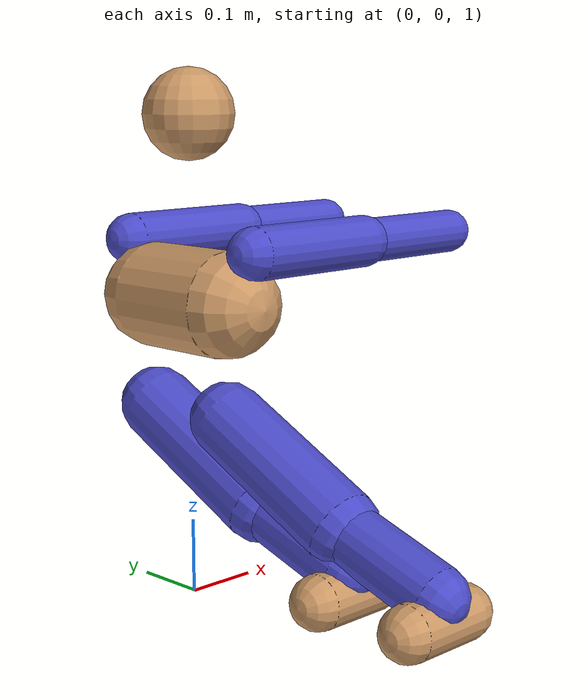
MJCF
<mujoco model="humanoid">
  <option timestep="0.002" gravity="0 0 -9.81" />

  <default>
    <joint damping="0.5" armature="0.1" />
    <geom friction="0.8" />
  </default>

  <asset>
    <material name="skin" rgba="0.8 0.6 0.4 1" />
    <material name="limb" rgba="0.3 0.3 0.8 1" />
  </asset>

  <worldbody>
    <light name="spotlight" mode="targetbodycom" target="torso" pos="0 -2 4" />

    <body name="torso" pos="0 0 1.4">
      <freejoint name="root" />
      <geom name="torso_geom" type="capsule" fromto="0 -0.07 0 0 0.07 0" size="0.07" material="skin" mass="5" />

      <!-- Head -->
      <body name="head" pos="0 0 0.24">
        <geom name="head_geom" type="sphere" size="0.06" material="skin" mass="0.5" />
      </body>

      <!-- Left Arm -->
      <body name="left_upper_arm" pos="0 -0.12 0.07">
        <joint name="left_shoulder" type="hinge" axis="0 1 0" range="-3.14 3.14" />
        <geom name="left_upper_arm_geom" type="capsule" fromto="0 0 0 0.2 0 0" size="0.035" material="limb" mass="1" />
        <body name="left_lower_arm" pos="0.2 0 0">
          <joint name="left_elbow" type="hinge" axis="0 0 1" range="-2.5 0" />
          <geom name="left_lower_arm_geom" type="capsule" fromto="0 0 0 0.18 0 0" size="0.03" material="limb" mass="0.8" />
        </body>
      </body>

      <!-- Right Arm -->
      <body name="right_upper_arm" pos="0 0.12 0.07">
        <joint name="right_shoulder" type="hinge" axis="0 1 0" range="-3.14 3.14" />
        <geom name="right_upper_arm_geom" type="capsule" fromto="0 0 0 0.2 0 0" size="0.035" material="limb" mass="1" />
        <body name="right_lower_arm" pos="0.2 0 0">
          <joint name="right_elbow" type="hinge" axis="0 0 1" range="-2.5 0" />
          <geom name="right_lower_arm_geom" type="capsule" fromto="0 0 0 0.18 0 0" size="0.03" material="limb" mass="0.8" />
        </body>
      </body>

      <!-- Left Leg -->
      <body name="left_upper_leg" pos="0 -0.07 -0.15">
        <joint name="left_hip" type="hinge" axis="1 0 0" range="-1.5 1.5" />
        <geom name="left_upper_leg_geom" type="capsule" fromto="0 0 0 0 -0.2 -0.1" size="0.05" material="limb" mass="2" />
        <body name="left_lower_leg" pos="0 -0.2 -0.1">
          <joint name="left_knee" type="hinge" axis="1 0 0" range="-2.5 0" />
          <geom name="left_lower_leg_geom" type="capsule" fromto="0 0 0 0 -0.15 -0.05" size="0.04" material="limb" mass="1.5" />
          <body name="left_foot" pos="0 -0.15 -0.05">
            <geom name="left_foot_geom" type="capsule" fromto="0.05 0 -0.03 -0.05 0 -0.03" size="0.035" material="skin" mass="0.5" />
          </body>
        </body>
      </body>

      <!-- Right Leg -->
      <body name="right_upper_leg" pos="0 0.07 -0.15">
        <joint name="right_hip" type="hinge" axis="1 0 0" range="-1.5 1.5" />
        <geom name="right_upper_leg_geom" type="capsule" fromto="0 0 0 0 -0.2 -0.1" size="0.05" material="limb" mass="2" />
        <body name="right_lower_leg" pos="0 -0.2 -0.1">
          <joint name="right_knee" type="hinge" axis="1 0 0" range="-2.5 0" />
          <geom name="right_lower_leg_geom" type="capsule" fromto="0 0 0 0 -0.15 -0.05" size="0.04" material="limb" mass="1.5" />
          <body name="right_foot" pos="0 -0.15 -0.05">
            <geom name="right_foot_geom" type="capsule" fromto="0.05 0 -0.03 -0.05 0 -0.03" size="0.035" material="skin" mass="0.5" />
          </body>
        </body>
      </body>
    </body>
  </worldbody>
</mujoco>
